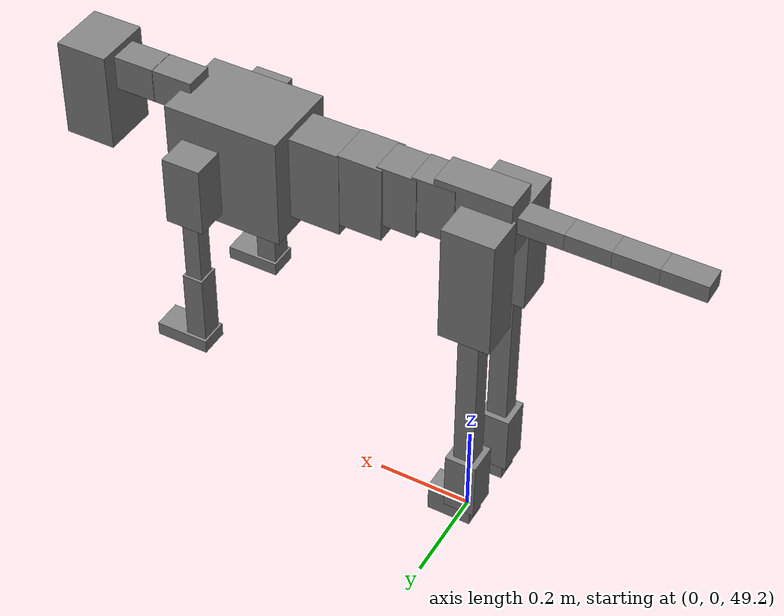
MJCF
<mujoco model="dog">

    <default>
        <joint armature="0.02" stiffness="1" damping="0.2" limited="true"/>
        <geom condim="3" friction="1 0.05 0.05" margin="0.01"/>
        <motor ctrllimited="true" ctrlrange="-1.0 1.0" forcelimited="true" gear="50"/>
    </default>

    <compiler inertiafromgeom="true" angle="radian"/>

    <option timestep="0.016" iterations="50" tolerance="1e-10" solver="Newton" jacobian="dense" cone="pyramidal"/>

    <size nconmax="20000" njmax="60000" nstack="5000000"/>
    <visual>
        <map force="0.1" zfar="30"/>
        <rgba haze="0.15 0.25 0.35 1"/>
        <quality shadowsize="2048"/>
        <global offwidth="800" offheight="800"/>
    </visual>

    <asset>
        <texture type="skybox" builtin="gradient" rgb1="0.3 0.5 0.7" rgb2="0 0 0" width="512" height="512"/>
        <texture name="texplane" type="2d" builtin="checker" rgb1=".2 .3 .4" rgb2=".1 0.15 0.2" width="512" height="512"
                 mark="cross" markrgb=".8 .8 .8"/>
        <texture name="texgeom" type="cube" builtin="flat" mark="cross" width="127" height="1278" rgb1="0.8 0.6 0.4"
                 rgb2="0.8 0.6 0.4" markrgb="1 1 1" random="0.01"/>

        <material name="matplane" reflectance="0.3" texture="texplane" texrepeat="1 1" texuniform="true"/>
        <material name="matgeom" texture="texgeom" texuniform="true" rgba="0.8 0.6 .4 1"/>
    </asset>

    <worldbody>
        <geom name="floor" pos="0 0 0" size="0 0 .25" type="plane" material="matplane" condim="3"/>

        <light directional="false" diffuse=".2 .2 .2" specular="0 0 0" pos="0 0 5" dir="0 0 -1" castshadow="false"/>
        <light mode="targetbodycom" target="torso" directional="false" diffuse=".8 .8 .8" specular="0.3 0.3 0.3"
               pos="0 0 4.0" dir="0 0 -1"/>

        <body name="root" pos="0 0 50">
            <freejoint name="root_1"/>
            <geom type="box" pos="0 0 -0.02" size="0.0774  0.0358  0.063" density="2030"/>

            <body name="spine1" pos="0.054 0 0">
                <joint name="spine1_y" axis="0 1 0" range="0 0.7" limited="true"/>
                <geom type="box" pos="0.02375 0 -0.03" size="0.04375  0.0375  0.05985" density="2030"/>

                <body name="spine2" pos="0.0612 0 0">
                    <joint name="spine2_y" axis="0 1 0" range="-0.15 0.15" limited="true"/>
                    <geom type="box" pos="0.03555  0  -0.04" size="0.04055  0.039  0.06615" density="2030"/>

                    <body name="spine3" pos="0.0730 0 0">
                        <joint name="spine3_y" axis="0 1 0" range="-0.15 0.15" limited="true"/>
                        <geom type="box" pos="0.03555  0  -0.057" size="0.04555  0.0445  0.081" density="2030"/>

                        <body name="spine4" pos="0.0780 0 0">
                            <joint name="spine4_y" axis="0 1 0" range="-0.15 0.15" limited="true"/>
                            <geom type="box" pos="0.05265  0  -0.07" size="0.05265  0.045  0.09135" density="2030"/>

                            <body name="torso" pos="0.1082 0 0">
                                <joint name="torso_y" axis="0 1 0" range="-0.15 0.15" limited="true"/>
                                <geom type="box" pos="0.11925  0  -0.085" size="0.11925  0.085  0.11745"
                                      density="2030"/>

                                <body name="neck1" pos="0.2160  0   0.0180">
                                    <joint name="neck1_y" axis="0 1 0" range="-1.2  -1" limited="true"/>
                                    <geom type="box" pos="0.0423  0  0" size="0.0423  0.03  0.036" density="2325"/>

                                    <body name="neck2" pos="0.0853  0  0">
                                        <joint name="neck2_y" axis="0 1 0" range="0.1  0" limited="true"/>
                                        <geom type="box" pos="0.0423  0  0" size="0.0423  0.03  0.036" density="2325"/>

                                        <body name="head" pos="0.0853  0  0">
                                            <joint name="head_y" axis="0 1 0" range="-0.3  -0.2" limited="true"/>
                                            <geom type="box" pos="0.0531  0  -0.055" size="0.0531  0.06  0.1044"
                                                  density="4030"/>

                                        </body>
                                    </body>
                                </body>

                                <body name="front_shoulder" pos="0.156  0   -0.0480">
                                    <joint name="front_shoulder_y" axis="0 1 0" range="-1 1.5" limited="true"/>
                                    <geom type="box" pos="0 0.13 -0.0465" size="0.0395  0.0338  0.0732" density="1158"/>
                                    <geom type="box" pos="0 -0.13 -0.0465" size="0.0395  0.0338  0.0732"
                                          density="1158"/>

                                    <body name="front_elbow" pos="0  0  -0.0930">
                                        <joint name="front_elbow_y" axis="0 1 0" range="-2 0" limited="true"/>
                                        <geom type="box" pos="0 0.13 -0.0892" size="0.0172  0.0176  0.0892"
                                              density="1081"/>
                                        <geom type="box" pos="0 -0.13 -0.0892" size="0.0172  0.0176  0.0892"
                                              density="1081"/>

                                        <body name="front_wrist" pos="0  0  -0.1784">
                                            <joint name="front_wrist_y" axis="0 1 0" range="-0.2 0" limited="true"/>
                                            <geom type="box" pos="0 0.13 -0.0754" size="0.0212  0.0236  0.0885"
                                                  density="1664"/>
                                            <geom type="box" pos="0 -0.13 -0.0754" size="0.0212  0.0236  0.0885"
                                                  density="1664"/>

                                            <body name="front_finger_end" pos="0  0  -0.1508">
                                                <joint name="front_finger_y" axis="0 1 0" range="-0.4 1"
                                                       limited="true"/>
                                                <geom type="box" pos="0.0302  0.13  0.0006"
                                                      size="0.0554  0.0302  0.0144" density="1515"/>
                                                <geom type="box" pos="0.0302  -0.13  0.0006"
                                                      size="0.0554  0.0302  0.0144" density="1515"/>

                                            </body>

                                        </body>
                                    </body>
                                </body>

                            </body>
                        </body>
                    </body>
                </body>
            </body>

            <body name="back_hip" pos="-0.03 0 -0.018">
                <joint name="back_hip_y" axis="0 1 0" range="-1.5 0.3" limited="true"/>
                <geom type="box" pos="0 0.07 -0.1032" size="0.0526  0.0413  0.1260" density="1154"/>
                <geom type="box" pos="0 -0.07 -0.1032" size="0.0526  0.0413  0.1260" density="1154"/>

                <body name="back_knee" pos="0  0  -0.2064">
                    <joint name="back_knee_y" axis="0 1 0" range="0 2.8" limited="true"/>
                    <geom type="box" pos="0 0.07 -0.1795" size="0.0211  0.0208  0.1950" density="1227"/>
                    <geom type="box" pos="0 -0.07 -0.1795" size="0.0211  0.0208  0.1950" density="1227"/>

                    <body name="back_ankle" pos="0  0  -0.3590">
                        <joint name="back_ankle_y" axis="0 1 0" range="-2.2 0" limited="true"/>
                        <geom type="box" pos="0 0.07 -0.0546" size="0.0327  0.0327  0.0659" density="1284"/>
                        <geom type="box" pos="0 -0.07 -0.0546" size="0.0327  0.0327  0.0659" density="1284"/>

                        <body name="back_toe_end" pos="0  0  -0.1092">
                            <joint name="back_toe_y" axis="0 1 0" range="-0.4 1" limited="true"/>
                            <geom type="box" pos="0.0251  0.07  -0.0174" size="0.0460  0.0251  0.0324" density="1515"/>
                            <geom type="box" pos="0.0251  -0.07  -0.0174" size="0.0460  0.0251  0.0324" density="1515"/>

                        </body>
                    </body>
                </body>
            </body>

            <body name="tail1" pos="-0.074 0 -0.006">
                <joint name="tail1_y" axis="0 1 0" range="-0.2 0.2" limited="true"/>
                <geom type="box" pos="-0.0536  0  0" size="0.045  0.025  0.0175" density="1587"/>

                <body name="tail2" pos="-0.09 0 0">
                    <joint name="tail2_y" axis="0 1 0" range="-0.2 0.2" limited="true"/>
                    <geom type="box" pos="-0.0536  0  0" size="0.045  0.025  0.0175" density="1587"/>

                    <body name="tail3" pos="-0.09 0 0">
                        <joint name="tail3_y" axis="0 1 0" range="-0.2 0.2" limited="true"/>
                        <geom type="box" pos="-0.0536  0  0" size="0.045  0.025  0.0175" density="1587"/>

                        <body name="tail4" pos="-0.09 0 0">
                            <joint name="tail4_y" axis="0 1 0" range="-0.2 0.2" limited="true"/>
                            <geom type="box" pos="-0.0536  0  0" size="0.045  0.025  0.0175" density="1587"/>

                        </body>
                    </body>
                </body>
            </body>
        </body>
    </worldbody>

    <actuator>
        <motor joint="spine1_y" forcerange="-150 150     "/>
        <motor joint="spine2_y" forcerange="-150 150     "/>
        <motor joint="spine3_y" forcerange="-150 150     "/>
        <motor joint="spine4_y" forcerange="-150 150     "/>
        <motor joint="torso_y" forcerange="-150 150     "/>
        <motor joint="neck1_y" forcerange="-100 100       "/>
        <motor joint="neck2_y" forcerange="-100 100       "/>
        <motor joint="head_y" forcerange="-150 150       "/>
        <motor joint="front_shoulder_y" forcerange="-188.92 136.39"/>
        <motor joint="front_elbow_y" forcerange="-101.34 126.76"/>
        <motor joint="front_wrist_y" forcerange="-127.30 61.53"/>
        <motor joint="front_finger_y" forcerange="-50.65 70.59"/>
        <motor joint="back_hip_y" forcerange="-357.18 393.17"/>
        <motor joint="back_knee_y" forcerange="-276.52 225.53"/>
        <motor joint="back_angle_y" forcerange="-174.36 248.77"/>
        <motor joint="back_toe_y" forcerange="-34.01 86.80"/>
        <motor joint="tail1_y" forcerange="-50 50     "/>
        <motor joint="tail2_y" forcerange="-50 50     "/>
        <motor joint="tail3_y" forcerange="-50 50     "/>
        <motor joint="tail4_y" forcerange="-50 50     "/>
    </actuator>
</mujoco>
